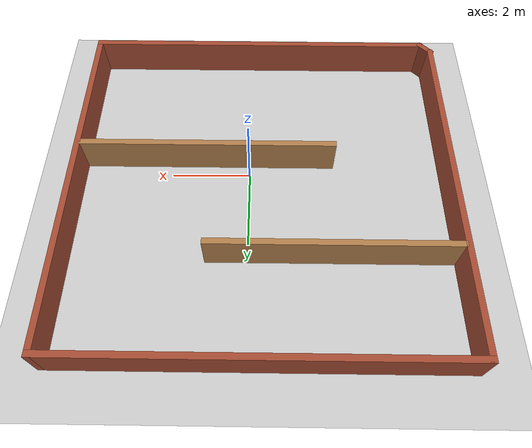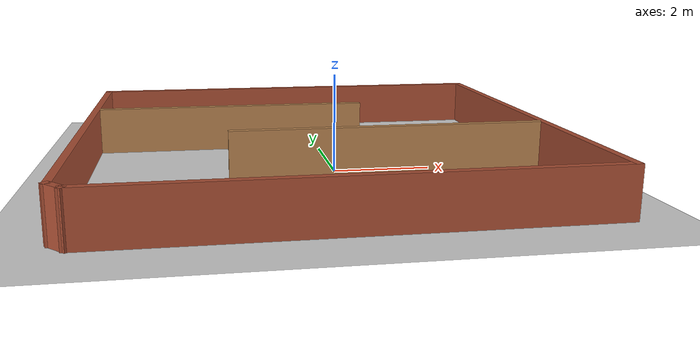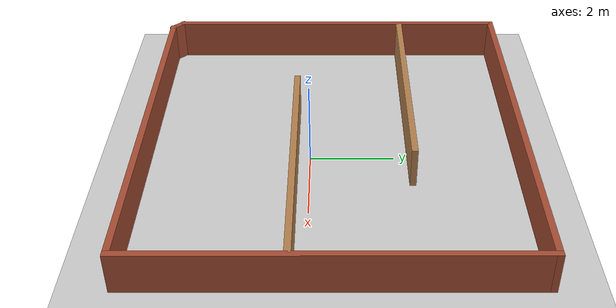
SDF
<sdf version="1.7">
 <world name="default">
  <light name="sun" type="directional">
   <pose>0 0 10 0 -0 0</pose>
   <diffuse>0.8 0.8 0.8 1</diffuse>
   <specular>0.2 0.2 0.2 1</specular>
   <attenuation>
    <range>1000</range>
    <constant>0.9</constant>
    <linear>0.01</linear>
    <quadratic>0.001</quadratic>
   </attenuation>
   <direction>-0.5 0.1 -0.9</direction>
   <spot><inner_angle>0</inner_angle><outer_angle>0</outer_angle><falloff>0</falloff></spot>
  </light>
  <model name="ground_plane">
   <static>1</static>
   <link name="link">
    <collision name="collision">
     <geometry><plane><normal>0 0 1</normal><size>100 100</size></plane></geometry>
     <surface><friction><ode><mu>100</mu><mu2>50</mu2></ode></friction></surface>
    </collision>
    <visual name="visual">
     <cast_shadows>0</cast_shadows>
     <geometry><plane><normal>0 0 1</normal><size>100 100</size></plane></geometry>
     <material>
      <script><uri>file://media/materials/scripts/gazebo.material</uri><name>Gazebo/Grey</name></script>
     </material>
    </visual>
   </link>
  </model>
  <gravity>0 0 -9.8</gravity>
  <magnetic_field>6e-06 2.3e-05 -4.2e-05</magnetic_field>
  <atmosphere type="adiabatic"/>
  <physics name="default_physics" default="0" type="ode">
   <max_step_size>0.001</max_step_size>
   <real_time_factor>1</real_time_factor>
   <real_time_update_rate>1000</real_time_update_rate>
  </physics>
  <scene><ambient>0.4 0.4 0.4 1</ambient><background>0.7 0.7 0.7 1</background><shadows>1</shadows></scene>
  <spherical_coordinates>
   <surface_model>EARTH_WGS84</surface_model>
   <latitude_deg>0</latitude_deg>
   <longitude_deg>0</longitude_deg>
   <elevation>0</elevation>
   <heading_deg>0</heading_deg>
  </spherical_coordinates>
  <model name="edu_amr_world">
   <pose>-0.34653 0.52047 0 0 -0 0</pose>
   <link name="Wall_12">
    <collision name="Wall_12_Collision">
     <geometry><box><size>6 0.15 1</size></box></geometry>
     <pose>0 0 0.5 0 -0 0</pose>
    </collision>
    <visual name="Wall_12_Visual">
     <pose>0 0 0.5 0 -0 0</pose>
     <geometry><box><size>6 0.15 1</size></box></geometry>
     <material>
      <script><uri>file://media/materials/scripts/gazebo.material</uri><name>Gazebo/Wood</name></script>
      <ambient>1 1 1 1</ambient>
     </material>
     <meta><layer>0</layer></meta>
    </visual>
    <pose>-1.62747 1.87653 0 0 -0 0</pose>
   </link>
   <link name="Wall_14">
    <collision name="Wall_14_Collision">
     <geometry><box><size>6.5 0.15 1</size></box></geometry>
     <pose>0 0 0.5 0 -0 0</pose>
    </collision>
    <visual name="Wall_14_Visual">
     <pose>0 0 0.5 0 -0 0</pose>
     <geometry><box><size>6.5 0.15 1</size></box></geometry>
     <material>
      <script><uri>file://media/materials/scripts/gazebo.material</uri><name>Gazebo/Wood</name></script>
      <ambient>1 1 1 1</ambient>
     </material>
     <meta><layer>0</layer></meta>
    </visual>
    <pose>1.41453 -0.876467 0 0 -0 3.14159</pose>
   </link>
   <link name="Wall_3">
    <collision name="Wall_3_Collision">
     <geometry><box><size>9.25 0.15 1</size></box></geometry>
     <pose>0 0 0.5 0 -0 0</pose>
    </collision>
    <visual name="Wall_3_Visual">
     <pose>0 0 0.5 0 -0 0</pose>
     <geometry><box><size>9.25 0.15 1</size></box></geometry>
     <material>
      <script><uri>file://media/materials/scripts/gazebo.material</uri><name>Gazebo/Bricks</name></script>
      <ambient>1 1 1 1</ambient>
     </material>
     <meta><layer>0</layer></meta>
    </visual>
    <pose>0.140533 -4.40947 0 0 -0 0</pose>
   </link>
   <link name="Wall_4">
    <collision name="Wall_4_Collision">
     <geometry><box><size>9 0.15 1</size></box></geometry>
     <pose>0 0 0.5 0 -0 0</pose>
    </collision>
    <visual name="Wall_4_Visual">
     <pose>0 0 0.5 0 -0 0</pose>
     <geometry><box><size>9 0.15 1</size></box></geometry>
     <material>
      <script><uri>file://media/materials/scripts/gazebo.material</uri><name>Gazebo/Bricks</name></script>
      <ambient>1 1 1 1</ambient>
     </material>
     <meta><layer>0</layer></meta>
    </visual>
    <pose>4.69053 0.015533 0 0 -0 1.5708</pose>
   </link>
   <link name="Wall_5">
    <collision name="Wall_5_Collision">
     <geometry><box><size>9.5 0.15 1</size></box></geometry>
     <pose>0 0 0.5 0 -0 0</pose>
    </collision>
    <visual name="Wall_5_Visual">
     <pose>0 0 0.5 0 -0 0</pose>
     <geometry><box><size>9.5 0.15 1</size></box></geometry>
     <material>
      <script><uri>file://media/materials/scripts/gazebo.material</uri><name>Gazebo/Bricks</name></script>
      <ambient>1 1 1 1</ambient>
     </material>
     <meta><layer>0</layer></meta>
    </visual>
    <pose>0.015533 4.44053 0 0 -0 3.14159</pose>
   </link>
   <link name="Wall_6">
    <collision name="Wall_6_Collision">
     <geometry><box><size>8.75 0.15 1</size></box></geometry>
     <pose>0 0 0.5 0 -0 0</pose>
    </collision>
    <visual name="Wall_6_Visual">
     <pose>0 0 0.5 0 -0 0</pose>
     <geometry><box><size>8.75 0.15 1</size></box></geometry>
     <material>
      <script><uri>file://media/materials/scripts/gazebo.material</uri><name>Gazebo/Bricks</name></script>
      <ambient>1 1 1 1</ambient>
     </material>
     <meta><layer>0</layer></meta>
    </visual>
    <pose>-4.65947 0.140533 0 0 -0 -1.5708</pose>
   </link>
   <link name="Wall_7">
    <collision name="Wall_7_Collision">
     <geometry><box><size>0.503553 0.15 1</size></box></geometry>
     <pose>0 0 0.5 0 -0 0</pose>
    </collision>
    <visual name="Wall_7_Visual">
     <pose>0 0 0.5 0 -0 0</pose>
     <geometry><box><size>0.503553 0.15 1</size></box></geometry>
     <material>
      <script><uri>file://media/materials/scripts/gazebo.material</uri><name>Gazebo/Bricks</name></script>
      <ambient>1 1 1 1</ambient>
     </material>
     <meta><layer>0</layer></meta>
    </visual>
    <pose>-4.53447 -4.28447 0 0 -0 -0.785398</pose>
   </link>
   <static>1</static>
  </model>
 </world>
</sdf>
